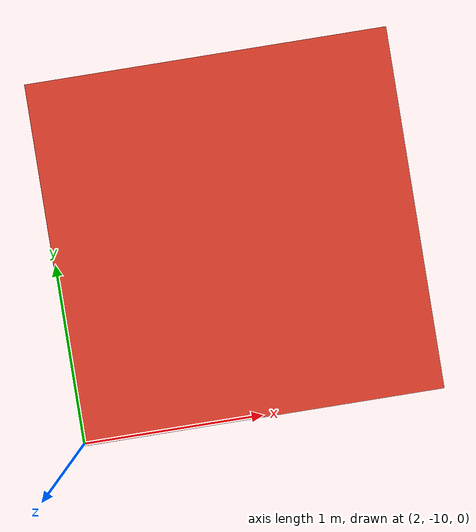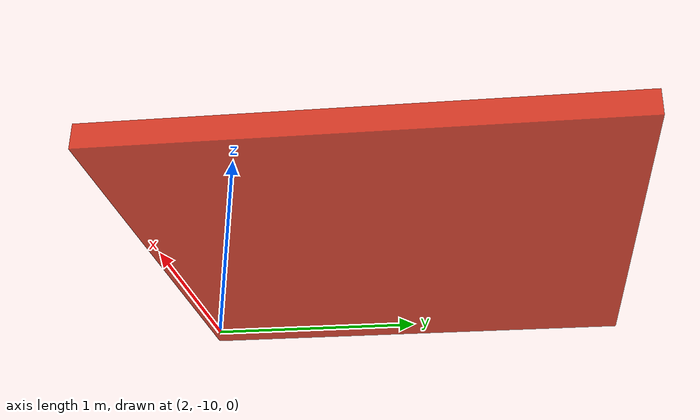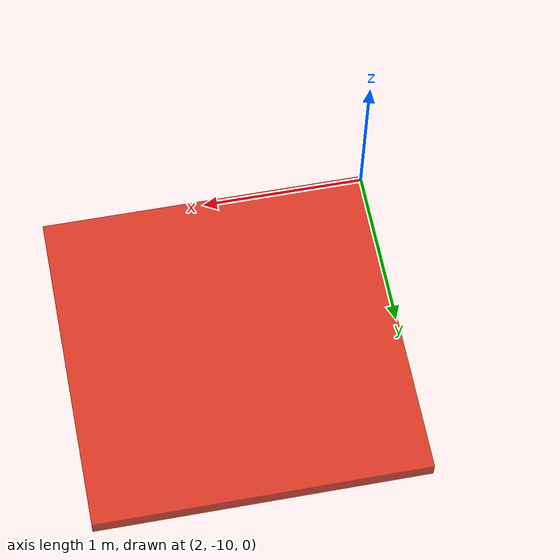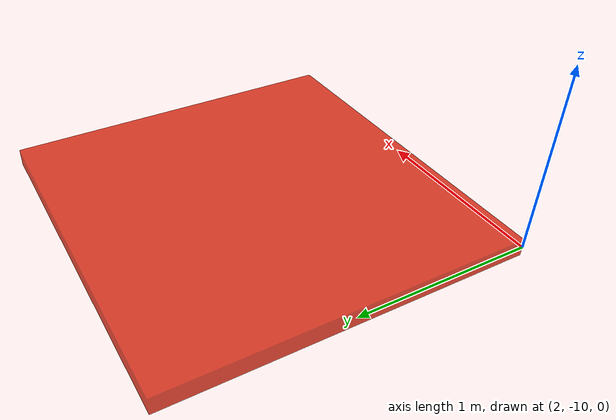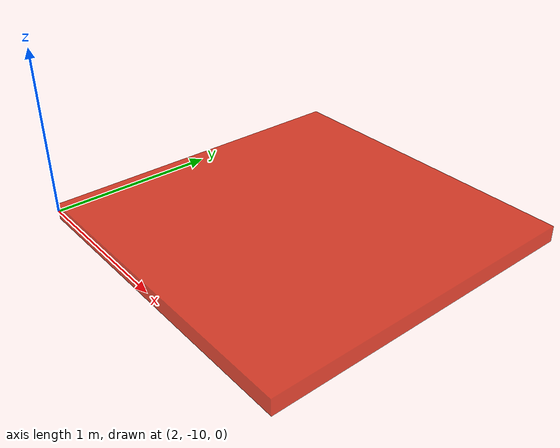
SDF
<sdf version="1.6">
  <model name="tile_1_-5">
    <pose>3 -9 0 0 0 0</pose>
      <link name="tile_1_-5">
        <pose>0 0 0 0 -0 0</pose>
        <inertial>
          <mass>260.134</mass>
          <inertia>
            <ixx>86.8209</ixx>
            <ixy>0</ixy>
            <ixz>0</ixz>
            <iyy>86.8213</iyy>
            <iyz>0</iyz>
            <izz>173.423</izz>
          </inertia>
          <pose>0 0 0 0 -0 0</pose>
        </inertial>
        <visual name='visual'>
          <geometry>
            <box>
              <size>2 2 0.1</size>
            </box>
          </geometry>
          <material>
            <ambient>0.9 0.1 0 0.8</ambient>
            <diffuse>0.9 0.1 0 0.8</diffuse>
            <specular>0.9 0.1 0 0.8</specular>
          </material>
        </visual>
        <collision name='collision'>
          <geometry>
            <box>
              <size>2 2 0.1</size>
            </box>
          </geometry>
          <surface>
            <friction>
              <ode>
                <mu>37.0</mu>
                <mu2>55.00000000000001</mu2>
              </ode>
            </friction>
            <bounce/>
            <contact/>
          </surface>
        </collision>
        <enable_wind>false</enable_wind>
      </link>
  </model>
</sdf>
